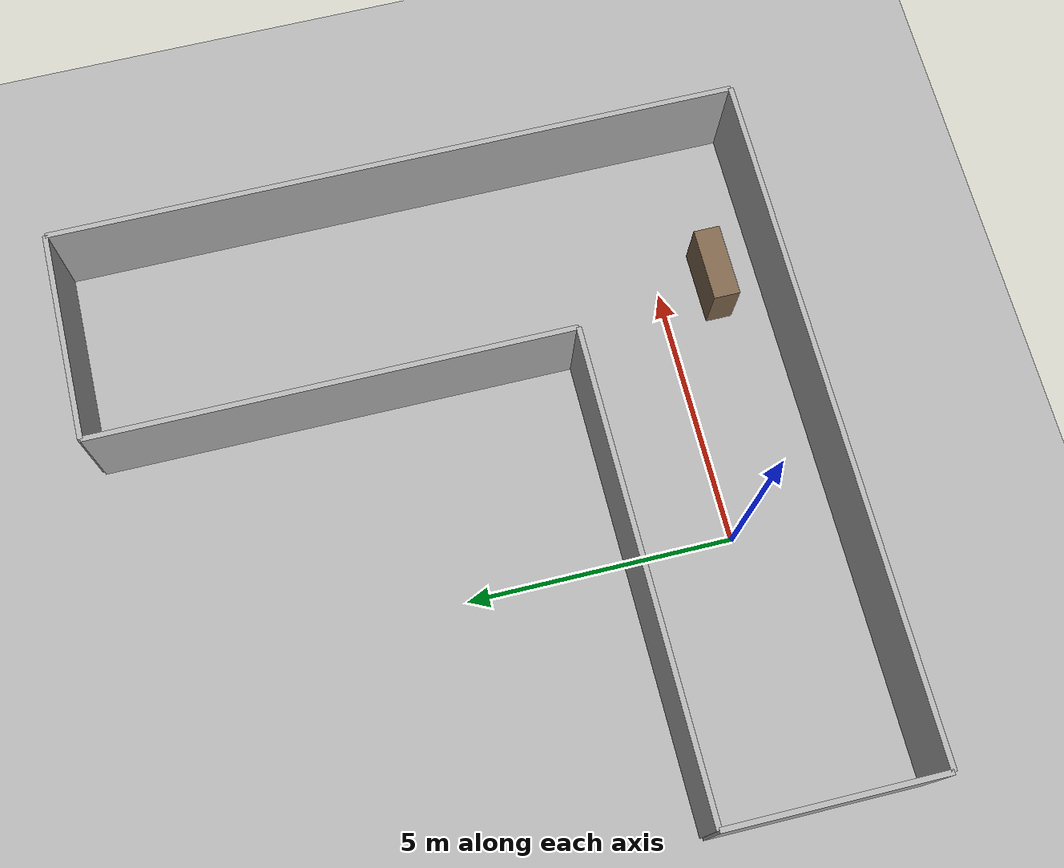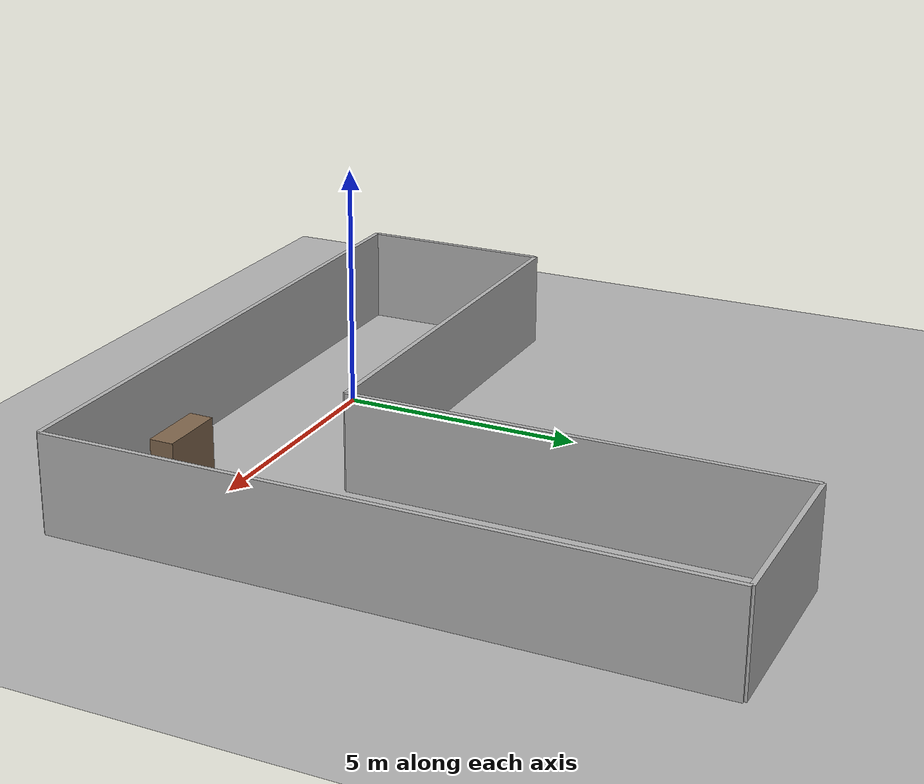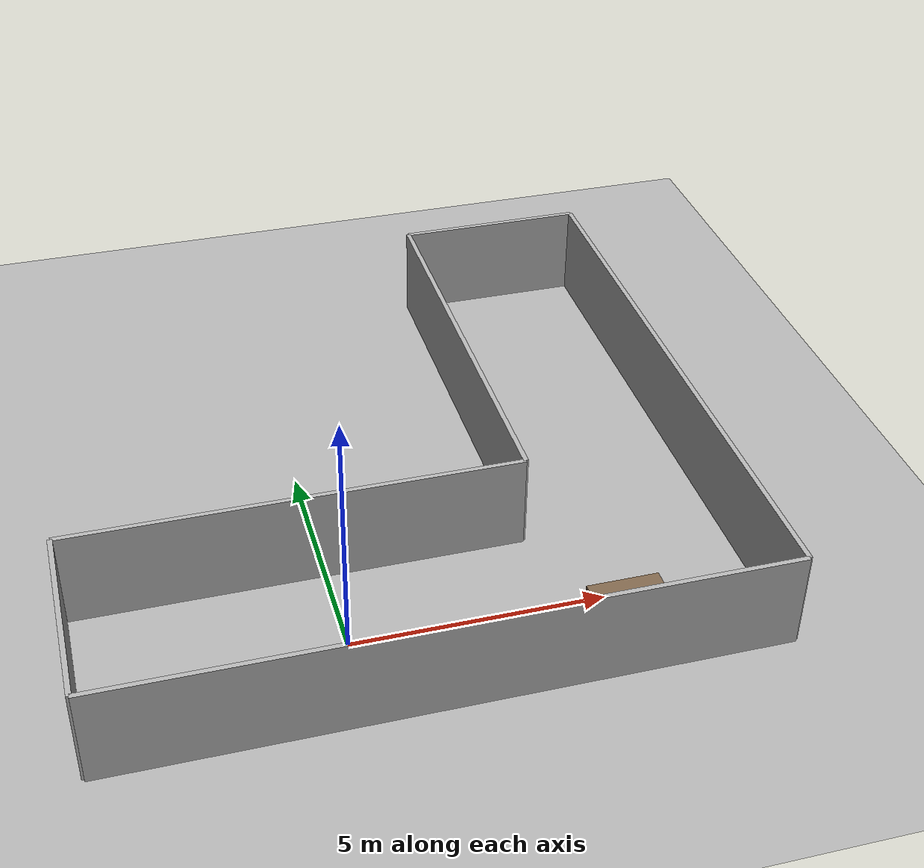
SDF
<?xml version="1.0" ?>
<sdf version='1.9'>
  <world name='corridor_world'>

    <!-- Physics -->
    <physics name='1ms' type='ignored'>
      <max_step_size>0.001</max_step_size>
      <real_time_factor>1.0</real_time_factor>
      <real_time_update_rate>1000</real_time_update_rate>
    </physics>

    <!-- Core systems -->
    <plugin name='ignition::gazebo::systems::Physics' filename='ignition-gazebo-physics-system'/>
    <plugin name='ignition::gazebo::systems::SceneBroadcaster' filename='ignition-gazebo-scene-broadcaster-system'/>
    <plugin name='ignition::gazebo::systems::UserCommands' filename='ignition-gazebo-user-commands-system'/>
    <plugin name='ignition::gazebo::systems::Sensors' filename='ignition-gazebo-sensors-system'>
      <render_engine>ogre2</render_engine>
    </plugin>

    <!-- Environment -->
    <gravity>0 0 -9.81</gravity>

    <scene>
      <ambient>0.4 0.4 0.4 1</ambient>
      <background>0.7 0.7 0.7 1</background>
      <shadows>true</shadows>
    </scene>

    <!-- Ground -->
    <model name='ground_plane'>
      <static>true</static>
      <link name='link'>
        <collision name='collision'>
          <geometry>
            <plane>
              <normal>0 0 1</normal>
              <size>25 25</size>
            </plane>
          </geometry>
        </collision>
        <visual name='visual'>
          <geometry>
            <plane>
              <normal>0 0 1</normal>
              <size>25 25</size>
            </plane>
          </geometry>
          <material>
              <ambient>0.7 0.7 0.7 1</ambient>
              <diffuse>0.7 0.7 0.7 1</diffuse>
          </material>
        </visual>
      </link>
    </model>

    <!-- L corridor walls (2 legs x 10 m) -->
    <model name='wall_bottom_h'>
      <static>true</static>
      <link name='link'>
        <collision name='collision'>
          <geometry>
            <box>
              <size>13 0.1 2</size>
            </box>
          </geometry>
        </collision>
        <visual name='visual'>
          <geometry>
            <box>
              <size>13 0.1 2</size>
            </box>
          </geometry>
          <material>
              <ambient>0.7 0.7 0.7 1</ambient>
              <diffuse>0.7 0.7 0.7 1</diffuse>
          </material>
        </visual>
      </link>
      <pose>1.5 -2 1 0 0 0</pose>
    </model>

    <model name='wall_top_h'>
      <static>true</static>
      <link name='link'>
        <collision name='collision'>
          <geometry>
            <box>
              <size>9 0.1 2</size>
            </box>
          </geometry>
        </collision>
        <visual name='visual'>
          <geometry>
            <box>
              <size>9 0.1 2</size>
            </box>
          </geometry>
          <material>
              <ambient>0.7 0.7 0.7 1</ambient>
              <diffuse>0.7 0.7 0.7 1</diffuse>
          </material>
        </visual>
      </link>
      <pose>-0.5 2 1 0 0 0</pose>
    </model>

    <model name='wall_left_cap'>
      <static>true</static>
      <link name='link'>
        <collision name='collision'>
          <geometry>
            <box>
              <size>4 0.1 2</size>
            </box>
          </geometry>
        </collision>
        <visual name='visual'>
          <geometry>
            <box>
              <size>4 0.1 2</size>
            </box>
          </geometry>
          <material>
              <ambient>0.7 0.7 0.7 1</ambient>
              <diffuse>0.7 0.7 0.7 1</diffuse>
          </material>
        </visual>
      </link>
      <pose>-5 0 1 0 0 1.5708</pose>
    </model>

    <model name='wall_outer_v'>
      <static>true</static>
      <link name='link'>
        <collision name='collision'>
          <geometry>
            <box>
              <size>13 0.1 2</size>
            </box>
          </geometry>
        </collision>
        <visual name='visual'>
          <geometry>
            <box>
              <size>13 0.1 2</size>
            </box>
          </geometry>
          <material>
              <ambient>0.7 0.7 0.7 1</ambient>
              <diffuse>0.7 0.7 0.7 1</diffuse>
          </material>
        </visual>
      </link>
      <pose>8 4.5 1 0 0 1.5708</pose>
    </model>

    <model name='wall_inner_v'>
      <static>true</static>
      <link name='link'>
        <collision name='collision'>
          <geometry>
            <box>
              <size>9 0.1 2</size>
            </box>
          </geometry>
        </collision>
        <visual name='visual'>
          <geometry>
            <box>
              <size>9 0.1 2</size>
            </box>
          </geometry>
          <material>
              <ambient>0.7 0.7 0.7 1</ambient>
              <diffuse>0.7 0.7 0.7 1</diffuse>
          </material>
        </visual>
      </link>
      <pose>4 6.5 1 0 0 1.5708</pose>
    </model>

    <model name='wall_top_cap'>
      <static>true</static>
      <link name='link'>
        <collision name='collision'>
          <geometry>
            <box>
              <size>4 0.1 2</size>
            </box>
          </geometry>
        </collision>
        <visual name='visual'>
          <geometry>
            <box>
              <size>4 0.1 2</size>
            </box>
          </geometry>
          <material>
              <ambient>0.7 0.7 0.7 1</ambient>
              <diffuse>0.7 0.7 0.7 1</diffuse>
          </material>
        </visual>
      </link>
      <pose>6 11 1 0 0 0</pose>
    </model>

    <model name='column_center'>
      <static>true</static>
      <pose>5.0 -1.0 0.5 0 0 0</pose>
      <link name='link'>
        <collision name='col'><geometry><box><size>1.4 0.5 1.2</size></box></geometry></collision>
        <visual name='vis'><geometry><box><size>1.4 0.5 1.2</size></box></geometry><material><ambient>0.5 0.4 0.3 1</ambient><diffuse>0.5 0.4 0.3 1</diffuse></material></visual>
      </link>
    </model>

    <!-- Light -->
    <light name='sun' type='directional'>
      <pose>0 0 10 0 0 0</pose>
      <cast_shadows>true</cast_shadows>
      <intensity>1.0</intensity>
      <direction>-0.5 0.1 -0.9</direction>
    </light>

  </world>
</sdf>
